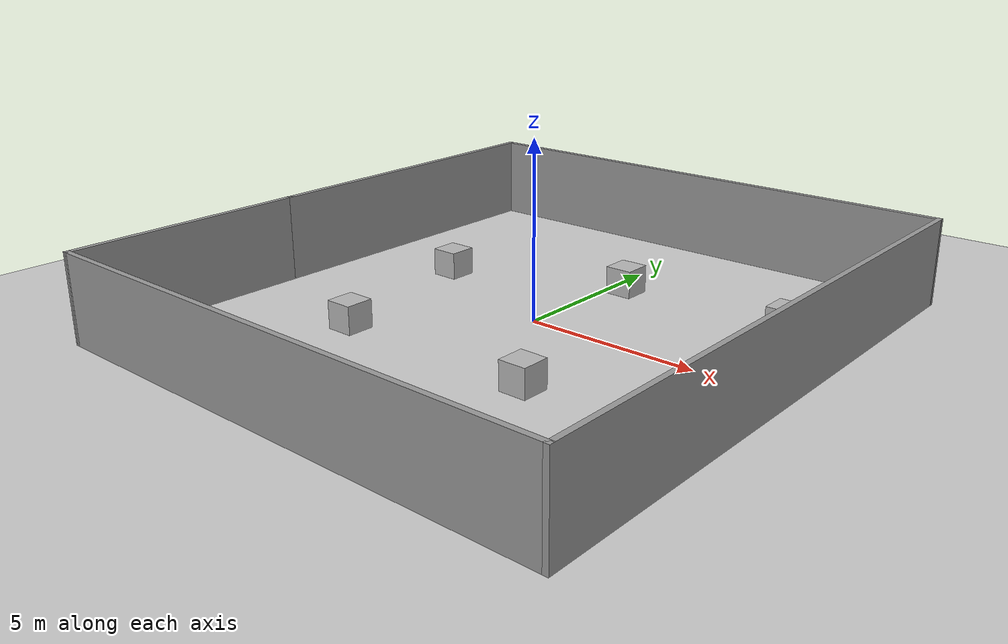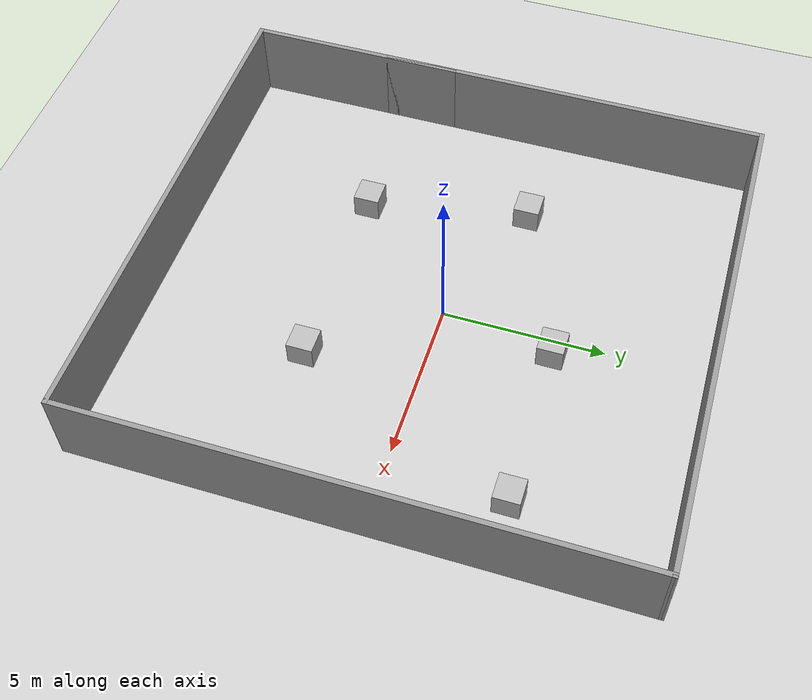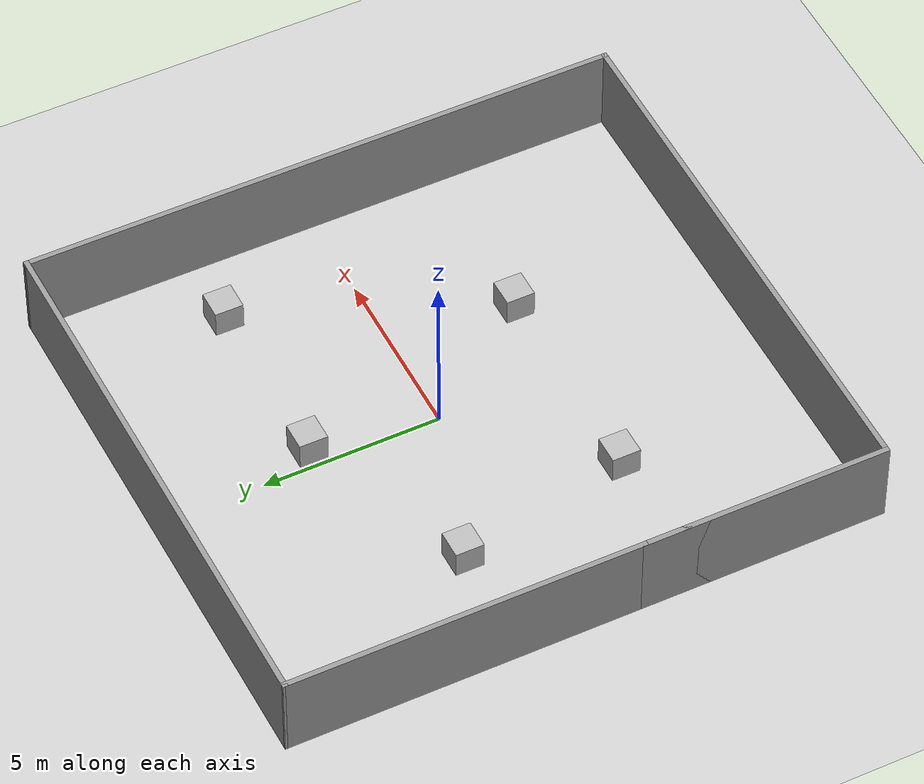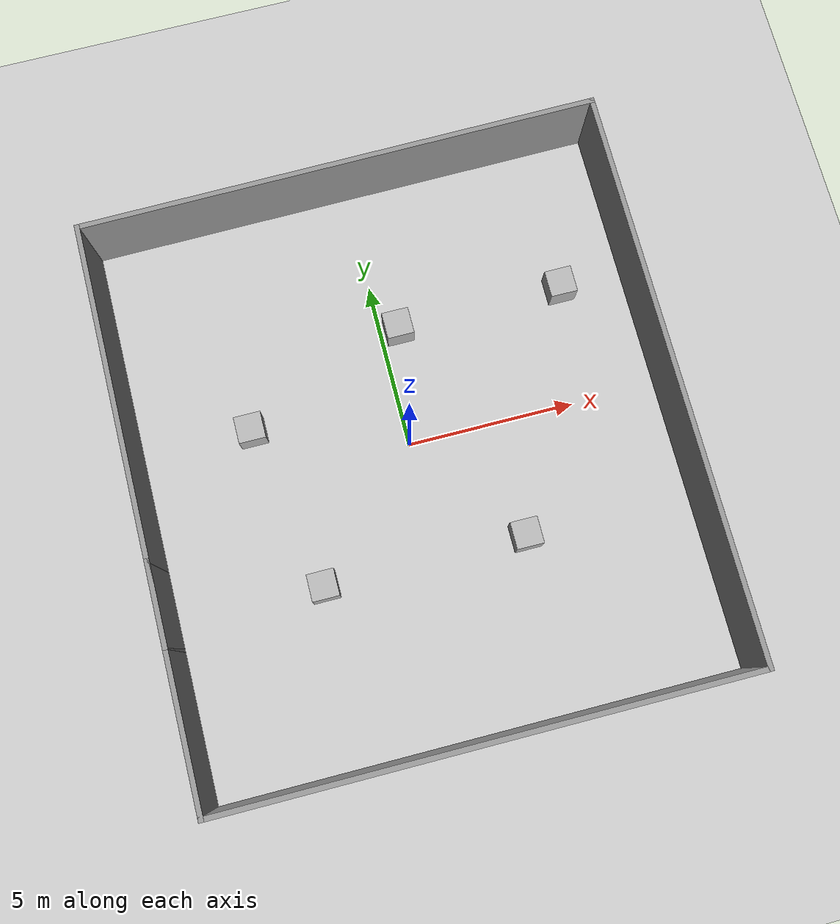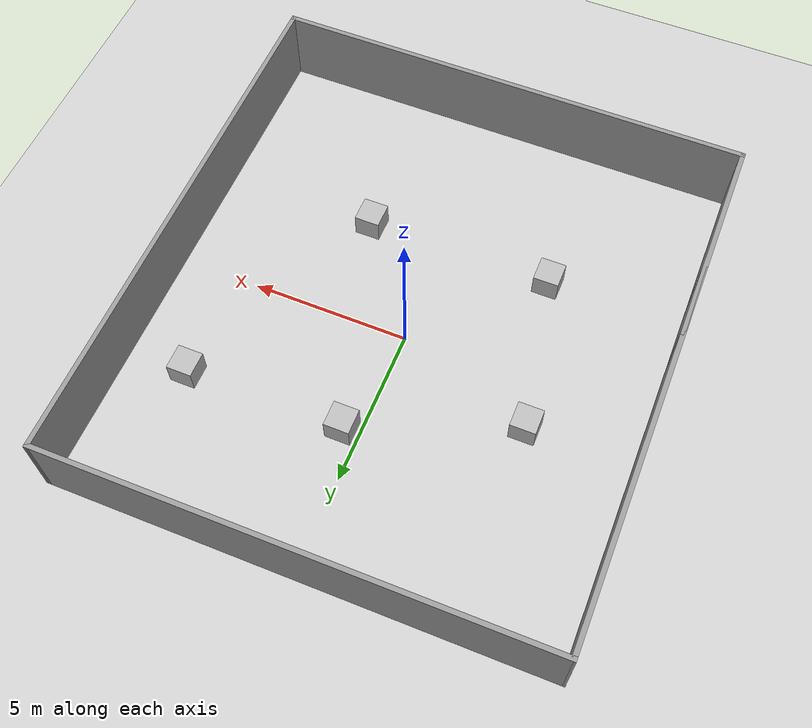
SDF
<sdf version="1.7">
 <world name="default">
  <light name="sun" type="directional">
   <pose>0 0 10 0 -0 0</pose>
   <diffuse>0.8 0.8 0.8 1</diffuse>
   <specular>0.2 0.2 0.2 1</specular>
   <attenuation>
    <range>1000</range>
    <constant>0.9</constant>
    <linear>0.01</linear>
    <quadratic>0.001</quadratic>
   </attenuation>
   <direction>-0.5 0.1 -0.9</direction>
   <spot><inner_angle>0</inner_angle><outer_angle>0</outer_angle><falloff>0</falloff></spot>
  </light>
  <model name="ground_plane">
   <static>1</static>
   <link name="link">
    <collision name="collision">
     <geometry><plane><normal>0 0 1</normal><size>100 100</size></plane></geometry>
     <surface><friction><ode><mu>100</mu><mu2>50</mu2></ode></friction></surface>
    </collision>
    <visual name="visual">
     <cast_shadows>0</cast_shadows>
     <geometry><plane><normal>0 0 1</normal><size>100 100</size></plane></geometry>
     <material>
      <script><uri>file://media/materials/scripts/gazebo.material</uri><name>Gazebo/Grey</name></script>
     </material>
    </visual>
   </link>
  </model>
  <gravity>0 0 -9.8</gravity>
  <magnetic_field>6e-06 2.3e-05 -4.2e-05</magnetic_field>
  <atmosphere type="adiabatic"/>
  <physics type="ode">
   <max_step_size>0.001</max_step_size>
   <real_time_factor>1</real_time_factor>
   <real_time_update_rate>1000</real_time_update_rate>
  </physics>
  <scene><ambient>0.4 0.4 0.4 1</ambient><background>0.7 0.7 0.7 1</background><shadows>1</shadows></scene>
  <spherical_coordinates>
   <surface_model>EARTH_WGS84</surface_model>
   <latitude_deg>0</latitude_deg>
   <longitude_deg>0</longitude_deg>
   <elevation>0</elevation>
   <heading_deg>0</heading_deg>
  </spherical_coordinates>
  <model name="walls">
   <pose>-0.088131 -0.277724 0 0 -0 0</pose>
   <link name="Wall_0">
    <collision name="Wall_0_Collision">
     <geometry><box><size>2.5 0.15 2.5</size></box></geometry>
     <pose>0 0 1.25 0 -0 0</pose>
    </collision>
    <visual name="Wall_0_Visual">
     <pose>0 0 1.25 0 -0 0</pose>
     <geometry><box><size>2.5 0.15 2.5</size></box></geometry>
     <material>
      <script><uri>file://media/materials/scripts/gazebo.material</uri><name>Gazebo/Grey</name></script>
      <ambient>1 1 1 1</ambient>
     </material>
     <meta><layer>0</layer></meta>
    </visual>
    <pose>-7.675 -2.75036 0 0 -0 1.5708</pose>
   </link>
   <link name="Wall_1">
    <collision name="Wall_1_Collision">
     <geometry><box><size>7 0.15 2.5</size></box></geometry>
     <pose>0 0 1.25 0 -0 0</pose>
    </collision>
    <visual name="Wall_1_Visual">
     <pose>0 0 1.25 0 -0 0</pose>
     <geometry><box><size>7 0.15 2.5</size></box></geometry>
     <material>
      <script><uri>file://media/materials/scripts/gazebo.material</uri><name>Gazebo/Grey</name></script>
      <ambient>1 1 1 1</ambient>
     </material>
     <meta><layer>0</layer></meta>
    </visual>
    <pose>-7.675 -5.00036 0 0 -0 -1.5708</pose>
   </link>
   <link name="Wall_2">
    <collision name="Wall_2_Collision">
     <geometry><box><size>15.5 0.15 2.5</size></box></geometry>
     <pose>0 0 1.25 0 -0 0</pose>
    </collision>
    <visual name="Wall_2_Visual">
     <pose>0 0 1.25 0 -0 0</pose>
     <geometry><box><size>15.5 0.15 2.5</size></box></geometry>
     <material>
      <script><uri>file://media/materials/scripts/gazebo.material</uri><name>Gazebo/Grey</name></script>
      <ambient>1 1 1 1</ambient>
     </material>
     <meta><layer>0</layer></meta>
    </visual>
    <pose>-0 -8.42536 0 0 -0 0</pose>
   </link>
   <link name="Wall_3">
    <collision name="Wall_3_Collision">
     <geometry><box><size>17 0.15 2.5</size></box></geometry>
     <pose>0 0 1.25 0 -0 0</pose>
    </collision>
    <visual name="Wall_3_Visual">
     <pose>0 0 1.25 0 -0 0</pose>
     <geometry><box><size>17 0.15 2.5</size></box></geometry>
     <material>
      <script><uri>file://media/materials/scripts/gazebo.material</uri><name>Gazebo/Grey</name></script>
      <ambient>1 1 1 1</ambient>
     </material>
     <meta><layer>0</layer></meta>
    </visual>
    <pose>7.675 -0.000364 0 0 -0 1.5708</pose>
   </link>
   <link name="Wall_6">
    <collision name="Wall_6_Collision">
     <geometry><box><size>10 0.15 2.5</size></box></geometry>
     <pose>0 0 1.25 0 -0 0</pose>
    </collision>
    <visual name="Wall_6_Visual">
     <pose>0 0 1.25 0 -0 0</pose>
     <geometry><box><size>10 0.15 2.5</size></box></geometry>
     <material>
      <script><uri>file://media/materials/scripts/gazebo.material</uri><name>Gazebo/Grey</name></script>
      <ambient>1 1 1 1</ambient>
     </material>
     <meta><layer>0</layer></meta>
    </visual>
    <pose>-7.675 3.34964 0 0 -0 1.5708</pose>
   </link>
   <link name="Wall_7">
    <collision name="Wall_7_Collision">
     <geometry><box><size>15.5007 0.15 2.5</size></box></geometry>
     <pose>0 0 1.25 0 -0 0</pose>
    </collision>
    <visual name="Wall_7_Visual">
     <pose>0 0 1.25 0 -0 0</pose>
     <geometry><box><size>15.5007 0.15 2.5</size></box></geometry>
     <material>
      <script><uri>file://media/materials/scripts/gazebo.material</uri><name>Gazebo/Grey</name></script>
      <ambient>1 1 1 1</ambient>
     </material>
     <meta><layer>0</layer></meta>
    </visual>
    <pose>-0 8.34964 0 0 -0 0.009772</pose>
   </link>
   <static>1</static>
  </model>
  <model name="number8">
   <pose>2.56427 -3.46367 0.4 0 -0 0</pose>
   <static>1</static>
   <link name="link">
    <visual name="visual">
     <geometry><mesh><uri>model://number1/meshes/number.dae</uri></mesh></geometry>
     <material>
      <script>
       <uri>model://number8/materials/scripts</uri>
       <uri>model://number8/materials/textures</uri>
       <name>Number/Eight</name>
      </script>
     </material>
    </visual>
   </link>
  </model>
  <model name="number1">
   <pose>-3.41586 -3.46599 0.4 0 -0 0</pose>
   <static>1</static>
   <link name="link">
    <visual name="visual">
     <geometry><mesh><uri>model://number1/meshes/number.dae</uri></mesh></geometry>
     <material>
      <script>
       <uri>model://number1/materials/scripts</uri>
       <uri>model://number1/materials/textures</uri>
       <name>Number/One</name>
      </script>
     </material>
    </visual>
   </link>
  </model>
  <model name="number3">
   <pose>5.56465 3.55229 0.4 0 -0 0</pose>
   <static>1</static>
   <link name="link">
    <visual name="visual">
     <geometry><mesh><uri>model://number1/meshes/number.dae</uri></mesh></geometry>
     <material>
      <script>
       <uri>model://number3/materials/scripts</uri>
       <uri>model://number3/materials/textures</uri>
       <name>Number/Three</name>
      </script>
     </material>
    </visual>
   </link>
  </model>
  <model name="number5">
   <pose>0.532446 3.4992 0.4 0 -0 0</pose>
   <static>1</static>
   <link name="link">
    <visual name="visual">
     <geometry><mesh><uri>model://number1/meshes/number.dae</uri></mesh></geometry>
     <material>
      <script>
       <uri>model://number5/materials/scripts</uri>
       <uri>model://number5/materials/textures</uri>
       <name>Number/Five</name>
      </script>
     </material>
    </visual>
   </link>
  </model>
  <model name="number2">
   <pose>-4.41521 1.49665 0.4 0 -0 0</pose>
   <static>1</static>
   <link name="link">
    <visual name="visual">
     <geometry><mesh><uri>model://number1/meshes/number.dae</uri></mesh></geometry>
     <material>
      <script>
       <uri>model://number2/materials/scripts</uri>
       <uri>model://number2/materials/textures</uri>
       <name>Number/Two</name>
      </script>
     </material>
    </visual>
   </link>
  </model>
 </world>
</sdf>
